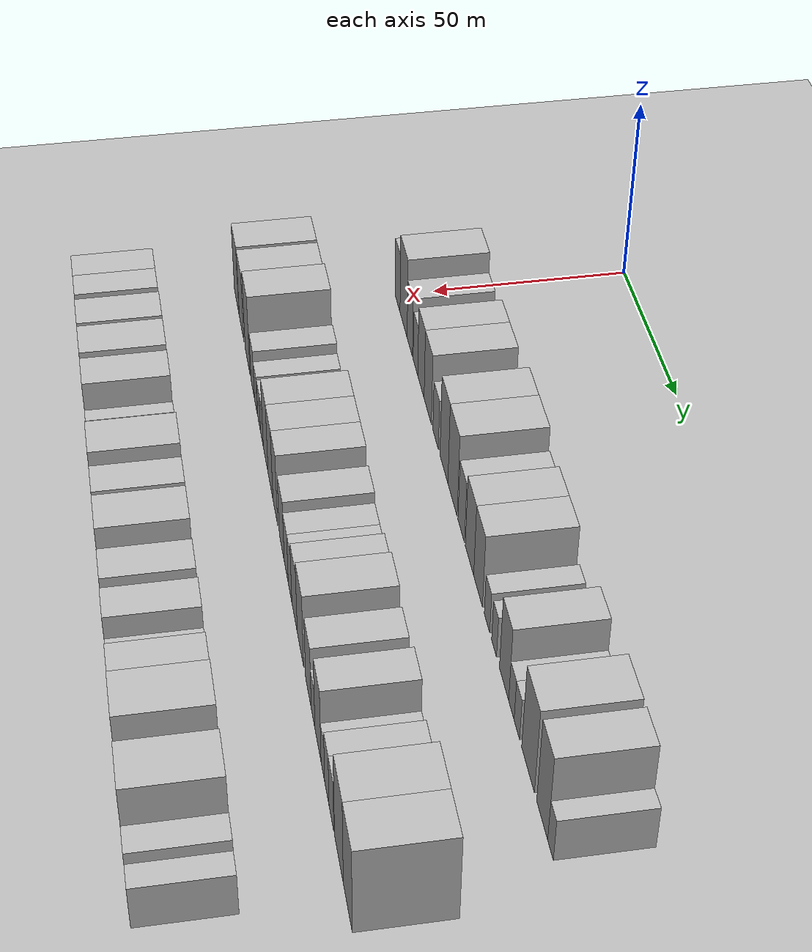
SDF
<sdf version="1.6">
 <world name="default">
  <include><name>ground_plane_1</name><uri>model://HANNAS_ground_plane</uri></include>
  <include>
   <name>ground_plane_2</name>
   <uri>model://HANNAS_ground_plane</uri>
   <pose>100 0 0  0 0 0</pose>
  </include>
  <model name="building_47">
   <static>1</static>
   <pose>50.0000 4.2151 0 0.000000 0.000000 0.000000</pose>
   <link name="link">
    <pose>0 0 9.00 0 0 0</pose>
    <collision name="collision"><geometry><box><size>20.0000 7.3452 18.0000</size></box></geometry></collision>
    <visual name="visual">
     <cast_shadows>0</cast_shadows>
     <geometry><box><size>20.0000 7.3452 18.0000</size></box></geometry>
     <material>
      <script>
       <uri>model://HANNAS_wall/materials/scripts</uri>
       <uri>model://HANNAS_wall/materials/textures</uri>
       <name>vrc/HANNAS_wall</name>
      </script>
     </material>
    </visual>
   </link>
  </model>
  <model name="building_48">
   <static>1</static>
   <pose>50.0000 13.1274 0 0.000000 0.000000 0.000000</pose>
   <link name="link">
    <pose>0 0 12.00 0 0 0</pose>
    <collision name="collision"><geometry><box><size>20.0000 10.4795 24.0000</size></box></geometry></collision>
    <visual name="visual">
     <cast_shadows>0</cast_shadows>
     <geometry><box><size>20.0000 10.4795 24.0000</size></box></geometry>
     <material>
      <script>
       <uri>model://HANNAS_wall/materials/scripts</uri>
       <uri>model://HANNAS_wall/materials/textures</uri>
       <name>vrc/HANNAS_wall</name>
      </script>
     </material>
    </visual>
   </link>
  </model>
  <model name="building_49">
   <static>1</static>
   <pose>50.0000 22.2083 0 0.000000 0.000000 0.000000</pose>
   <link name="link">
    <pose>0 0 9.00 0 0 0</pose>
    <collision name="collision"><geometry><box><size>20.0000 7.6822 18.0000</size></box></geometry></collision>
    <visual name="visual">
     <cast_shadows>0</cast_shadows>
     <geometry><box><size>20.0000 7.6822 18.0000</size></box></geometry>
     <material>
      <script>
       <uri>model://HANNAS_wall/materials/scripts</uri>
       <uri>model://HANNAS_wall/materials/textures</uri>
       <name>vrc/HANNAS_wall</name>
      </script>
     </material>
    </visual>
   </link>
  </model>
  <model name="building_50">
   <static>1</static>
   <pose>50.0000 30.2727 0 0.000000 0.000000 0.000000</pose>
   <link name="link">
    <pose>0 0 7.50 0 0 0</pose>
    <collision name="collision"><geometry><box><size>20.0000 6.4468 15.0000</size></box></geometry></collision>
    <visual name="visual">
     <cast_shadows>0</cast_shadows>
     <geometry><box><size>20.0000 6.4468 15.0000</size></box></geometry>
     <material>
      <script>
       <uri>model://HANNAS_wall/materials/scripts</uri>
       <uri>model://HANNAS_wall/materials/textures</uri>
       <name>vrc/HANNAS_wall</name>
      </script>
     </material>
    </visual>
   </link>
  </model>
  <model name="building_51">
   <static>1</static>
   <pose>50.0000 37.8832 0 0.000000 0.000000 0.000000</pose>
   <link name="link">
    <pose>0 0 10.50 0 0 0</pose>
    <collision name="collision"><geometry><box><size>20.0000 8.7742 21.0000</size></box></geometry></collision>
    <visual name="visual">
     <cast_shadows>0</cast_shadows>
     <geometry><box><size>20.0000 8.7742 21.0000</size></box></geometry>
     <material>
      <script>
       <uri>model://HANNAS_wall/materials/scripts</uri>
       <uri>model://HANNAS_wall/materials/textures</uri>
       <name>vrc/HANNAS_wall</name>
      </script>
     </material>
    </visual>
   </link>
  </model>
  <model name="building_52">
   <static>1</static>
   <pose>50.0000 47.1397 0 0.000000 0.000000 0.000000</pose>
   <link name="link">
    <pose>0 0 10.50 0 0 0</pose>
    <collision name="collision"><geometry><box><size>20.0000 9.7388 21.0000</size></box></geometry></collision>
    <visual name="visual">
     <cast_shadows>0</cast_shadows>
     <geometry><box><size>20.0000 9.7388 21.0000</size></box></geometry>
     <material>
      <script>
       <uri>model://HANNAS_wall/materials/scripts</uri>
       <uri>model://HANNAS_wall/materials/textures</uri>
       <name>vrc/HANNAS_wall</name>
      </script>
     </material>
    </visual>
   </link>
  </model>
  <model name="building_53">
   <static>1</static>
   <pose>50.0000 57.5916 0 0.000000 0.000000 0.000000</pose>
   <link name="link">
    <pose>0 0 7.50 0 0 0</pose>
    <collision name="collision"><geometry><box><size>20.0000 7.1648 15.0000</size></box></geometry></collision>
    <visual name="visual">
     <cast_shadows>0</cast_shadows>
     <geometry><box><size>20.0000 7.1648 15.0000</size></box></geometry>
     <material>
      <script>
       <uri>model://HANNAS_wall/materials/scripts</uri>
       <uri>model://HANNAS_wall/materials/textures</uri>
       <name>vrc/HANNAS_wall</name>
      </script>
     </material>
    </visual>
   </link>
  </model>
  <model name="building_54">
   <static>1</static>
   <pose>50.0000 68.1539 0 0.000000 0.000000 0.000000</pose>
   <link name="link">
    <pose>0 0 12.00 0 0 0</pose>
    <collision name="collision"><geometry><box><size>20.0000 9.9598 24.0000</size></box></geometry></collision>
    <visual name="visual">
     <cast_shadows>0</cast_shadows>
     <geometry><box><size>20.0000 9.9598 24.0000</size></box></geometry>
     <material>
      <script>
       <uri>model://HANNAS_wall/materials/scripts</uri>
       <uri>model://HANNAS_wall/materials/textures</uri>
       <name>vrc/HANNAS_wall</name>
      </script>
     </material>
    </visual>
   </link>
  </model>
  <model name="building_55">
   <static>1</static>
   <pose>50.0000 78.7421 0 0.000000 0.000000 0.000000</pose>
   <link name="link">
    <pose>0 0 12.00 0 0 0</pose>
    <collision name="collision"><geometry><box><size>20.0000 11.2167 24.0000</size></box></geometry></collision>
    <visual name="visual">
     <cast_shadows>0</cast_shadows>
     <geometry><box><size>20.0000 11.2167 24.0000</size></box></geometry>
     <material>
      <script>
       <uri>model://HANNAS_wall/materials/scripts</uri>
       <uri>model://HANNAS_wall/materials/textures</uri>
       <name>vrc/HANNAS_wall</name>
      </script>
     </material>
    </visual>
   </link>
  </model>
  <model name="building_56">
   <static>1</static>
   <pose>50.0000 89.1733 0 0.000000 0.000000 0.000000</pose>
   <link name="link">
    <pose>0 0 9.00 0 0 0</pose>
    <collision name="collision"><geometry><box><size>20.0000 7.6456 18.0000</size></box></geometry></collision>
    <visual name="visual">
     <cast_shadows>0</cast_shadows>
     <geometry><box><size>20.0000 7.6456 18.0000</size></box></geometry>
     <material>
      <script>
       <uri>model://HANNAS_wall/materials/scripts</uri>
       <uri>model://HANNAS_wall/materials/textures</uri>
       <name>vrc/HANNAS_wall</name>
      </script>
     </material>
    </visual>
   </link>
  </model>
  <model name="building_57">
   <static>1</static>
   <pose>50.0000 98.7597 0 0.000000 0.000000 0.000000</pose>
   <link name="link">
    <pose>0 0 10.50 0 0 0</pose>
    <collision name="collision"><geometry><box><size>20.0000 9.5273 21.0000</size></box></geometry></collision>
    <visual name="visual">
     <cast_shadows>0</cast_shadows>
     <geometry><box><size>20.0000 9.5273 21.0000</size></box></geometry>
     <material>
      <script>
       <uri>model://HANNAS_wall/materials/scripts</uri>
       <uri>model://HANNAS_wall/materials/textures</uri>
       <name>vrc/HANNAS_wall</name>
      </script>
     </material>
    </visual>
   </link>
  </model>
  <model name="building_58">
   <static>1</static>
   <pose>50.0000 108.3690 0 0.000000 0.000000 0.000000</pose>
   <link name="link">
    <pose>0 0 10.50 0 0 0</pose>
    <collision name="collision"><geometry><box><size>20.0000 9.6912 21.0000</size></box></geometry></collision>
    <visual name="visual">
     <cast_shadows>0</cast_shadows>
     <geometry><box><size>20.0000 9.6912 21.0000</size></box></geometry>
     <material>
      <script>
       <uri>model://HANNAS_wall/materials/scripts</uri>
       <uri>model://HANNAS_wall/materials/textures</uri>
       <name>vrc/HANNAS_wall</name>
      </script>
     </material>
    </visual>
   </link>
  </model>
  <model name="building_59">
   <static>1</static>
   <pose>50.0000 118.1064 0 0.000000 0.000000 0.000000</pose>
   <link name="link">
    <pose>0 0 6.00 0 0 0</pose>
    <collision name="collision"><geometry><box><size>20.0000 5.7835 12.0000</size></box></geometry></collision>
    <visual name="visual">
     <cast_shadows>0</cast_shadows>
     <geometry><box><size>20.0000 5.7835 12.0000</size></box></geometry>
     <material>
      <script>
       <uri>model://HANNAS_wall/materials/scripts</uri>
       <uri>model://HANNAS_wall/materials/textures</uri>
       <name>vrc/HANNAS_wall</name>
      </script>
     </material>
    </visual>
   </link>
  </model>
  <model name="building_60">
   <static>1</static>
   <pose>50.0000 125.5553 0 0.000000 0.000000 0.000000</pose>
   <link name="link">
    <pose>0 0 6.00 0 0 0</pose>
    <collision name="collision"><geometry><box><size>20.0000 5.1142 12.0000</size></box></geometry></collision>
    <visual name="visual">
     <cast_shadows>0</cast_shadows>
     <geometry><box><size>20.0000 5.1142 12.0000</size></box></geometry>
     <material>
      <script>
       <uri>model://HANNAS_wall/materials/scripts</uri>
       <uri>model://HANNAS_wall/materials/textures</uri>
       <name>vrc/HANNAS_wall</name>
      </script>
     </material>
    </visual>
   </link>
  </model>
  <model name="building_61">
   <static>1</static>
   <pose>50.0000 135.7428 0 0.000000 0.000000 0.000000</pose>
   <link name="link">
    <pose>0 0 10.50 0 0 0</pose>
    <collision name="collision"><geometry><box><size>20.0000 9.2609 21.0000</size></box></geometry></collision>
    <visual name="visual">
     <cast_shadows>0</cast_shadows>
     <geometry><box><size>20.0000 9.2609 21.0000</size></box></geometry>
     <material>
      <script>
       <uri>model://HANNAS_wall/materials/scripts</uri>
       <uri>model://HANNAS_wall/materials/textures</uri>
       <name>vrc/HANNAS_wall</name>
      </script>
     </material>
    </visual>
   </link>
  </model>
  <model name="building_62">
   <static>1</static>
   <pose>50.0000 143.0421 0 0.000000 0.000000 0.000000</pose>
   <link name="link">
    <pose>0 0 6.00 0 0 0</pose>
    <collision name="collision"><geometry><box><size>20.0000 5.3376 12.0000</size></box></geometry></collision>
    <visual name="visual">
     <cast_shadows>0</cast_shadows>
     <geometry><box><size>20.0000 5.3376 12.0000</size></box></geometry>
     <material>
      <script>
       <uri>model://HANNAS_wall/materials/scripts</uri>
       <uri>model://HANNAS_wall/materials/textures</uri>
       <name>vrc/HANNAS_wall</name>
      </script>
     </material>
    </visual>
   </link>
  </model>
  <model name="building_63">
   <static>1</static>
   <pose>50.0000 148.3317 0 0.000000 0.000000 0.000000</pose>
   <link name="link">
    <pose>0 0 6.00 0 0 0</pose>
    <collision name="collision"><geometry><box><size>20.0000 5.2416 12.0000</size></box></geometry></collision>
    <visual name="visual">
     <cast_shadows>0</cast_shadows>
     <geometry><box><size>20.0000 5.2416 12.0000</size></box></geometry>
     <material>
      <script>
       <uri>model://HANNAS_wall/materials/scripts</uri>
       <uri>model://HANNAS_wall/materials/textures</uri>
       <name>vrc/HANNAS_wall</name>
      </script>
     </material>
    </visual>
   </link>
  </model>
  <model name="building_64">
   <static>1</static>
   <pose>50.0000 158.8901 0 0.000000 0.000000 0.000000</pose>
   <link name="link">
    <pose>0 0 12.00 0 0 0</pose>
    <collision name="collision"><geometry><box><size>20.0000 11.8753 24.0000</size></box></geometry></collision>
    <visual name="visual">
     <cast_shadows>0</cast_shadows>
     <geometry><box><size>20.0000 11.8753 24.0000</size></box></geometry>
     <material>
      <script>
       <uri>model://HANNAS_wall/materials/scripts</uri>
       <uri>model://HANNAS_wall/materials/textures</uri>
       <name>vrc/HANNAS_wall</name>
      </script>
     </material>
    </visual>
   </link>
  </model>
  <model name="building_65">
   <static>1</static>
   <pose>50.0000 171.6861 0 0.000000 0.000000 0.000000</pose>
   <link name="link">
    <pose>0 0 12.00 0 0 0</pose>
    <collision name="collision"><geometry><box><size>20.0000 9.7167 24.0000</size></box></geometry></collision>
    <visual name="visual">
     <cast_shadows>0</cast_shadows>
     <geometry><box><size>20.0000 9.7167 24.0000</size></box></geometry>
     <material>
      <script>
       <uri>model://HANNAS_wall/materials/scripts</uri>
       <uri>model://HANNAS_wall/materials/textures</uri>
       <name>vrc/HANNAS_wall</name>
      </script>
     </material>
    </visual>
   </link>
  </model>
  <model name="building_66">
   <static>1</static>
   <pose>50.0000 178.9846 0 0.000000 0.000000 0.000000</pose>
   <link name="link">
    <pose>0 0 6.00 0 0 0</pose>
    <collision name="collision"><geometry><box><size>20.0000 4.8803 12.0000</size></box></geometry></collision>
    <visual name="visual">
     <cast_shadows>0</cast_shadows>
     <geometry><box><size>20.0000 4.8803 12.0000</size></box></geometry>
     <material>
      <script>
       <uri>model://HANNAS_wall/materials/scripts</uri>
       <uri>model://HANNAS_wall/materials/textures</uri>
       <name>vrc/HANNAS_wall</name>
      </script>
     </material>
    </visual>
   </link>
  </model>
  <model name="building_133">
   <static>1</static>
   <pose>90.0000 -2.7751 0 0.000000 0.000000 0.000000</pose>
   <link name="link">
    <pose>0 0 10.50 0 0 0</pose>
    <collision name="collision"><geometry><box><size>20.0000 10.3760 21.0000</size></box></geometry></collision>
    <visual name="visual">
     <cast_shadows>0</cast_shadows>
     <geometry><box><size>20.0000 10.3760 21.0000</size></box></geometry>
     <material>
      <script>
       <uri>model://HANNAS_wall/materials/scripts</uri>
       <uri>model://HANNAS_wall/materials/textures</uri>
       <name>vrc/HANNAS_wall</name>
      </script>
     </material>
    </visual>
   </link>
  </model>
  <model name="building_134">
   <static>1</static>
   <pose>90.0000 8.4978 0 0.000000 0.000000 0.000000</pose>
   <link name="link">
    <pose>0 0 10.50 0 0 0</pose>
    <collision name="collision"><geometry><box><size>20.0000 10.1699 21.0000</size></box></geometry></collision>
    <visual name="visual">
     <cast_shadows>0</cast_shadows>
     <geometry><box><size>20.0000 10.1699 21.0000</size></box></geometry>
     <material>
      <script>
       <uri>model://HANNAS_wall/materials/scripts</uri>
       <uri>model://HANNAS_wall/materials/textures</uri>
       <name>vrc/HANNAS_wall</name>
      </script>
     </material>
    </visual>
   </link>
  </model>
  <model name="building_135">
   <static>1</static>
   <pose>90.0000 21.8195 0 0.000000 0.000000 0.000000</pose>
   <link name="link">
    <pose>0 0 12.00 0 0 0</pose>
    <collision name="collision"><geometry><box><size>20.0000 10.4735 24.0000</size></box></geometry></collision>
    <visual name="visual">
     <cast_shadows>0</cast_shadows>
     <geometry><box><size>20.0000 10.4735 24.0000</size></box></geometry>
     <material>
      <script>
       <uri>model://HANNAS_wall/materials/scripts</uri>
       <uri>model://HANNAS_wall/materials/textures</uri>
       <name>vrc/HANNAS_wall</name>
      </script>
     </material>
    </visual>
   </link>
  </model>
  <model name="building_136">
   <static>1</static>
   <pose>90.0000 32.7237 0 0.000000 0.000000 0.000000</pose>
   <link name="link">
    <pose>0 0 7.50 0 0 0</pose>
    <collision name="collision"><geometry><box><size>20.0000 7.3347 15.0000</size></box></geometry></collision>
    <visual name="visual">
     <cast_shadows>0</cast_shadows>
     <geometry><box><size>20.0000 7.3347 15.0000</size></box></geometry>
     <material>
      <script>
       <uri>model://HANNAS_wall/materials/scripts</uri>
       <uri>model://HANNAS_wall/materials/textures</uri>
       <name>vrc/HANNAS_wall</name>
      </script>
     </material>
    </visual>
   </link>
  </model>
  <model name="building_137">
   <static>1</static>
   <pose>90.0000 39.3411 0 0.000000 0.000000 0.000000</pose>
   <link name="link">
    <pose>0 0 6.00 0 0 0</pose>
    <collision name="collision"><geometry><box><size>20.0000 5.9003 12.0000</size></box></geometry></collision>
    <visual name="visual">
     <cast_shadows>0</cast_shadows>
     <geometry><box><size>20.0000 5.9003 12.0000</size></box></geometry>
     <material>
      <script>
       <uri>model://HANNAS_wall/materials/scripts</uri>
       <uri>model://HANNAS_wall/materials/textures</uri>
       <name>vrc/HANNAS_wall</name>
      </script>
     </material>
    </visual>
   </link>
  </model>
  <model name="building_138">
   <static>1</static>
   <pose>90.0000 45.9272 0 0.000000 0.000000 0.000000</pose>
   <link name="link">
    <pose>0 0 6.00 0 0 0</pose>
    <collision name="collision"><geometry><box><size>20.0000 5.2719 12.0000</size></box></geometry></collision>
    <visual name="visual">
     <cast_shadows>0</cast_shadows>
     <geometry><box><size>20.0000 5.2719 12.0000</size></box></geometry>
     <material>
      <script>
       <uri>model://HANNAS_wall/materials/scripts</uri>
       <uri>model://HANNAS_wall/materials/textures</uri>
       <name>vrc/HANNAS_wall</name>
      </script>
     </material>
    </visual>
   </link>
  </model>
  <model name="building_139">
   <static>1</static>
   <pose>90.0000 51.3323 0 0.000000 0.000000 0.000000</pose>
   <link name="link">
    <pose>0 0 6.00 0 0 0</pose>
    <collision name="collision"><geometry><box><size>20.0000 5.5383 12.0000</size></box></geometry></collision>
    <visual name="visual">
     <cast_shadows>0</cast_shadows>
     <geometry><box><size>20.0000 5.5383 12.0000</size></box></geometry>
     <material>
      <script>
       <uri>model://HANNAS_wall/materials/scripts</uri>
       <uri>model://HANNAS_wall/materials/textures</uri>
       <name>vrc/HANNAS_wall</name>
      </script>
     </material>
    </visual>
   </link>
  </model>
  <model name="building_140">
   <static>1</static>
   <pose>90.0000 58.7376 0 0.000000 0.000000 0.000000</pose>
   <link name="link">
    <pose>0 0 10.50 0 0 0</pose>
    <collision name="collision"><geometry><box><size>20.0000 9.2723 21.0000</size></box></geometry></collision>
    <visual name="visual">
     <cast_shadows>0</cast_shadows>
     <geometry><box><size>20.0000 9.2723 21.0000</size></box></geometry>
     <material>
      <script>
       <uri>model://HANNAS_wall/materials/scripts</uri>
       <uri>model://HANNAS_wall/materials/textures</uri>
       <name>vrc/HANNAS_wall</name>
      </script>
     </material>
    </visual>
   </link>
  </model>
  <model name="building_141">
   <static>1</static>
   <pose>90.0000 67.9234 0 0.000000 0.000000 0.000000</pose>
   <link name="link">
    <pose>0 0 10.50 0 0 0</pose>
    <collision name="collision"><geometry><box><size>20.0000 9.0994 21.0000</size></box></geometry></collision>
    <visual name="visual">
     <cast_shadows>0</cast_shadows>
     <geometry><box><size>20.0000 9.0994 21.0000</size></box></geometry>
     <material>
      <script>
       <uri>model://HANNAS_wall/materials/scripts</uri>
       <uri>model://HANNAS_wall/materials/textures</uri>
       <name>vrc/HANNAS_wall</name>
      </script>
     </material>
    </visual>
   </link>
  </model>
  <model name="building_142">
   <static>1</static>
   <pose>90.0000 76.7113 0 0.000000 0.000000 0.000000</pose>
   <link name="link">
    <pose>0 0 10.50 0 0 0</pose>
    <collision name="collision"><geometry><box><size>20.0000 8.4764 21.0000</size></box></geometry></collision>
    <visual name="visual">
     <cast_shadows>0</cast_shadows>
     <geometry><box><size>20.0000 8.4764 21.0000</size></box></geometry>
     <material>
      <script>
       <uri>model://HANNAS_wall/materials/scripts</uri>
       <uri>model://HANNAS_wall/materials/textures</uri>
       <name>vrc/HANNAS_wall</name>
      </script>
     </material>
    </visual>
   </link>
  </model>
  <model name="building_143">
   <static>1</static>
   <pose>90.0000 88.3509 0 0.000000 0.000000 0.000000</pose>
   <link name="link">
    <pose>0 0 9.00 0 0 0</pose>
    <collision name="collision"><geometry><box><size>20.0000 8.8028 18.0000</size></box></geometry></collision>
    <visual name="visual">
     <cast_shadows>0</cast_shadows>
     <geometry><box><size>20.0000 8.8028 18.0000</size></box></geometry>
     <material>
      <script>
       <uri>model://HANNAS_wall/materials/scripts</uri>
       <uri>model://HANNAS_wall/materials/textures</uri>
       <name>vrc/HANNAS_wall</name>
      </script>
     </material>
    </visual>
   </link>
  </model>
  <model name="building_144">
   <static>1</static>
   <pose>90.0000 96.1806 0 0.000000 0.000000 0.000000</pose>
   <link name="link">
    <pose>0 0 7.50 0 0 0</pose>
    <collision name="collision"><geometry><box><size>20.0000 6.8566 15.0000</size></box></geometry></collision>
    <visual name="visual">
     <cast_shadows>0</cast_shadows>
     <geometry><box><size>20.0000 6.8566 15.0000</size></box></geometry>
     <material>
      <script>
       <uri>model://HANNAS_wall/materials/scripts</uri>
       <uri>model://HANNAS_wall/materials/textures</uri>
       <name>vrc/HANNAS_wall</name>
      </script>
     </material>
    </visual>
   </link>
  </model>
  <model name="building_145">
   <static>1</static>
   <pose>90.0000 102.6287 0 0.000000 0.000000 0.000000</pose>
   <link name="link">
    <pose>0 0 7.50 0 0 0</pose>
    <collision name="collision"><geometry><box><size>20.0000 6.0395 15.0000</size></box></geometry></collision>
    <visual name="visual">
     <cast_shadows>0</cast_shadows>
     <geometry><box><size>20.0000 6.0395 15.0000</size></box></geometry>
     <material>
      <script>
       <uri>model://HANNAS_wall/materials/scripts</uri>
       <uri>model://HANNAS_wall/materials/textures</uri>
       <name>vrc/HANNAS_wall</name>
      </script>
     </material>
    </visual>
   </link>
  </model>
  <model name="building_146">
   <static>1</static>
   <pose>90.0000 110.0951 0 0.000000 0.000000 0.000000</pose>
   <link name="link">
    <pose>0 0 9.00 0 0 0</pose>
    <collision name="collision"><geometry><box><size>20.0000 8.8934 18.0000</size></box></geometry></collision>
    <visual name="visual">
     <cast_shadows>0</cast_shadows>
     <geometry><box><size>20.0000 8.8934 18.0000</size></box></geometry>
     <material>
      <script>
       <uri>model://HANNAS_wall/materials/scripts</uri>
       <uri>model://HANNAS_wall/materials/textures</uri>
       <name>vrc/HANNAS_wall</name>
      </script>
     </material>
    </visual>
   </link>
  </model>
  <model name="building_147">
   <static>1</static>
   <pose>90.0000 119.5624 0 0.000000 0.000000 0.000000</pose>
   <link name="link">
    <pose>0 0 10.50 0 0 0</pose>
    <collision name="collision"><geometry><box><size>20.0000 10.0412 21.0000</size></box></geometry></collision>
    <visual name="visual">
     <cast_shadows>0</cast_shadows>
     <geometry><box><size>20.0000 10.0412 21.0000</size></box></geometry>
     <material>
      <script>
       <uri>model://HANNAS_wall/materials/scripts</uri>
       <uri>model://HANNAS_wall/materials/textures</uri>
       <name>vrc/HANNAS_wall</name>
      </script>
     </material>
    </visual>
   </link>
  </model>
  <model name="building_148">
   <static>1</static>
   <pose>90.0000 131.9085 0 0.000000 0.000000 0.000000</pose>
   <link name="link">
    <pose>0 0 9.00 0 0 0</pose>
    <collision name="collision"><geometry><box><size>20.0000 8.6510 18.0000</size></box></geometry></collision>
    <visual name="visual">
     <cast_shadows>0</cast_shadows>
     <geometry><box><size>20.0000 8.6510 18.0000</size></box></geometry>
     <material>
      <script>
       <uri>model://HANNAS_wall/materials/scripts</uri>
       <uri>model://HANNAS_wall/materials/textures</uri>
       <name>vrc/HANNAS_wall</name>
      </script>
     </material>
    </visual>
   </link>
  </model>
  <model name="building_149">
   <static>1</static>
   <pose>90.0000 139.0024 0 0.000000 0.000000 0.000000</pose>
   <link name="link">
    <pose>0 0 6.00 0 0 0</pose>
    <collision name="collision"><geometry><box><size>20.0000 5.5368 12.0000</size></box></geometry></collision>
    <visual name="visual">
     <cast_shadows>0</cast_shadows>
     <geometry><box><size>20.0000 5.5368 12.0000</size></box></geometry>
     <material>
      <script>
       <uri>model://HANNAS_wall/materials/scripts</uri>
       <uri>model://HANNAS_wall/materials/textures</uri>
       <name>vrc/HANNAS_wall</name>
      </script>
     </material>
    </visual>
   </link>
  </model>
  <model name="building_150">
   <static>1</static>
   <pose>90.0000 146.1587 0 0.000000 0.000000 0.000000</pose>
   <link name="link">
    <pose>0 0 10.50 0 0 0</pose>
    <collision name="collision"><geometry><box><size>20.0000 8.7758 21.0000</size></box></geometry></collision>
    <visual name="visual">
     <cast_shadows>0</cast_shadows>
     <geometry><box><size>20.0000 8.7758 21.0000</size></box></geometry>
     <material>
      <script>
       <uri>model://HANNAS_wall/materials/scripts</uri>
       <uri>model://HANNAS_wall/materials/textures</uri>
       <name>vrc/HANNAS_wall</name>
      </script>
     </material>
    </visual>
   </link>
  </model>
  <model name="building_151">
   <static>1</static>
   <pose>90.0000 153.0803 0 0.000000 0.000000 0.000000</pose>
   <link name="link">
    <pose>0 0 6.00 0 0 0</pose>
    <collision name="collision"><geometry><box><size>20.0000 5.0675 12.0000</size></box></geometry></collision>
    <visual name="visual">
     <cast_shadows>0</cast_shadows>
     <geometry><box><size>20.0000 5.0675 12.0000</size></box></geometry>
     <material>
      <script>
       <uri>model://HANNAS_wall/materials/scripts</uri>
       <uri>model://HANNAS_wall/materials/textures</uri>
       <name>vrc/HANNAS_wall</name>
      </script>
     </material>
    </visual>
   </link>
  </model>
  <model name="building_152">
   <static>1</static>
   <pose>90.0000 158.6460 0 0.000000 0.000000 0.000000</pose>
   <link name="link">
    <pose>0 0 7.50 0 0 0</pose>
    <collision name="collision"><geometry><box><size>20.0000 6.0639 15.0000</size></box></geometry></collision>
    <visual name="visual">
     <cast_shadows>0</cast_shadows>
     <geometry><box><size>20.0000 6.0639 15.0000</size></box></geometry>
     <material>
      <script>
       <uri>model://HANNAS_wall/materials/scripts</uri>
       <uri>model://HANNAS_wall/materials/textures</uri>
       <name>vrc/HANNAS_wall</name>
      </script>
     </material>
    </visual>
   </link>
  </model>
  <model name="building_153">
   <static>1</static>
   <pose>90.0000 164.8901 0 0.000000 0.000000 0.000000</pose>
   <link name="link">
    <pose>0 0 7.50 0 0 0</pose>
    <collision name="collision"><geometry><box><size>20.0000 6.4243 15.0000</size></box></geometry></collision>
    <visual name="visual">
     <cast_shadows>0</cast_shadows>
     <geometry><box><size>20.0000 6.4243 15.0000</size></box></geometry>
     <material>
      <script>
       <uri>model://HANNAS_wall/materials/scripts</uri>
       <uri>model://HANNAS_wall/materials/textures</uri>
       <name>vrc/HANNAS_wall</name>
      </script>
     </material>
    </visual>
   </link>
  </model>
  <model name="building_154">
   <static>1</static>
   <pose>90.0000 174.7963 0 0.000000 0.000000 0.000000</pose>
   <link name="link">
    <pose>0 0 12.00 0 0 0</pose>
    <collision name="collision"><geometry><box><size>20.0000 11.3881 24.0000</size></box></geometry></collision>
    <visual name="visual">
     <cast_shadows>0</cast_shadows>
     <geometry><box><size>20.0000 11.3881 24.0000</size></box></geometry>
     <material>
      <script>
       <uri>model://HANNAS_wall/materials/scripts</uri>
       <uri>model://HANNAS_wall/materials/textures</uri>
       <name>vrc/HANNAS_wall</name>
      </script>
     </material>
    </visual>
   </link>
  </model>
  <model name="building_155">
   <static>1</static>
   <pose>90.0000 186.1167 0 0.000000 0.000000 0.000000</pose>
   <link name="link">
    <pose>0 0 12.00 0 0 0</pose>
    <collision name="collision"><geometry><box><size>20.0000 11.2526 24.0000</size></box></geometry></collision>
    <visual name="visual">
     <cast_shadows>0</cast_shadows>
     <geometry><box><size>20.0000 11.2526 24.0000</size></box></geometry>
     <material>
      <script>
       <uri>model://HANNAS_wall/materials/scripts</uri>
       <uri>model://HANNAS_wall/materials/textures</uri>
       <name>vrc/HANNAS_wall</name>
      </script>
     </material>
    </visual>
   </link>
  </model>
  <model name="building_215">
   <static>1</static>
   <pose>130.0000 -0.5236 0 0.000000 0.000000 0.000000</pose>
   <link name="link">
    <pose>0 0 9.00 0 0 0</pose>
    <collision name="collision"><geometry><box><size>20.0000 8.3599 18.0000</size></box></geometry></collision>
    <visual name="visual">
     <cast_shadows>0</cast_shadows>
     <geometry><box><size>20.0000 8.3599 18.0000</size></box></geometry>
     <material>
      <script>
       <uri>model://HANNAS_wall/materials/scripts</uri>
       <uri>model://HANNAS_wall/materials/textures</uri>
       <name>vrc/HANNAS_wall</name>
      </script>
     </material>
    </visual>
   </link>
  </model>
  <model name="building_216">
   <static>1</static>
   <pose>130.0000 7.6116 0 0.000000 0.000000 0.000000</pose>
   <link name="link">
    <pose>0 0 9.00 0 0 0</pose>
    <collision name="collision"><geometry><box><size>20.0000 7.9106 18.0000</size></box></geometry></collision>
    <visual name="visual">
     <cast_shadows>0</cast_shadows>
     <geometry><box><size>20.0000 7.9106 18.0000</size></box></geometry>
     <material>
      <script>
       <uri>model://HANNAS_wall/materials/scripts</uri>
       <uri>model://HANNAS_wall/materials/textures</uri>
       <name>vrc/HANNAS_wall</name>
      </script>
     </material>
    </visual>
   </link>
  </model>
  <model name="building_217">
   <static>1</static>
   <pose>130.0000 14.4988 0 0.000000 0.000000 0.000000</pose>
   <link name="link">
    <pose>0 0 6.00 0 0 0</pose>
    <collision name="collision"><geometry><box><size>20.0000 5.8637 12.0000</size></box></geometry></collision>
    <visual name="visual">
     <cast_shadows>0</cast_shadows>
     <geometry><box><size>20.0000 5.8637 12.0000</size></box></geometry>
     <material>
      <script>
       <uri>model://HANNAS_wall/materials/scripts</uri>
       <uri>model://HANNAS_wall/materials/textures</uri>
       <name>vrc/HANNAS_wall</name>
      </script>
     </material>
    </visual>
   </link>
  </model>
  <model name="building_218">
   <static>1</static>
   <pose>130.0000 22.2190 0 0.000000 0.000000 0.000000</pose>
   <link name="link">
    <pose>0 0 10.50 0 0 0</pose>
    <collision name="collision"><geometry><box><size>20.0000 9.5768 21.0000</size></box></geometry></collision>
    <visual name="visual">
     <cast_shadows>0</cast_shadows>
     <geometry><box><size>20.0000 9.5768 21.0000</size></box></geometry>
     <material>
      <script>
       <uri>model://HANNAS_wall/materials/scripts</uri>
       <uri>model://HANNAS_wall/materials/textures</uri>
       <name>vrc/HANNAS_wall</name>
      </script>
     </material>
    </visual>
   </link>
  </model>
  <model name="building_219">
   <static>1</static>
   <pose>130.0000 33.1054 0 0.000000 0.000000 0.000000</pose>
   <link name="link">
    <pose>0 0 10.50 0 0 0</pose>
    <collision name="collision"><geometry><box><size>20.0000 10.1960 21.0000</size></box></geometry></collision>
    <visual name="visual">
     <cast_shadows>0</cast_shadows>
     <geometry><box><size>20.0000 10.1960 21.0000</size></box></geometry>
     <material>
      <script>
       <uri>model://HANNAS_wall/materials/scripts</uri>
       <uri>model://HANNAS_wall/materials/textures</uri>
       <name>vrc/HANNAS_wall</name>
      </script>
     </material>
    </visual>
   </link>
  </model>
  <model name="building_220">
   <static>1</static>
   <pose>130.0000 44.9539 0 0.000000 0.000000 0.000000</pose>
   <link name="link">
    <pose>0 0 10.50 0 0 0</pose>
    <collision name="collision"><geometry><box><size>20.0000 9.5009 21.0000</size></box></geometry></collision>
    <visual name="visual">
     <cast_shadows>0</cast_shadows>
     <geometry><box><size>20.0000 9.5009 21.0000</size></box></geometry>
     <material>
      <script>
       <uri>model://HANNAS_wall/materials/scripts</uri>
       <uri>model://HANNAS_wall/materials/textures</uri>
       <name>vrc/HANNAS_wall</name>
      </script>
     </material>
    </visual>
   </link>
  </model>
  <model name="building_221">
   <static>1</static>
   <pose>130.0000 55.4056 0 0.000000 0.000000 0.000000</pose>
   <link name="link">
    <pose>0 0 7.50 0 0 0</pose>
    <collision name="collision"><geometry><box><size>20.0000 7.4026 15.0000</size></box></geometry></collision>
    <visual name="visual">
     <cast_shadows>0</cast_shadows>
     <geometry><box><size>20.0000 7.4026 15.0000</size></box></geometry>
     <material>
      <script>
       <uri>model://HANNAS_wall/materials/scripts</uri>
       <uri>model://HANNAS_wall/materials/textures</uri>
       <name>vrc/HANNAS_wall</name>
      </script>
     </material>
    </visual>
   </link>
  </model>
  <model name="building_222">
   <static>1</static>
   <pose>130.0000 62.8012 0 0.000000 0.000000 0.000000</pose>
   <link name="link">
    <pose>0 0 9.00 0 0 0</pose>
    <collision name="collision"><geometry><box><size>20.0000 7.3885 18.0000</size></box></geometry></collision>
    <visual name="visual">
     <cast_shadows>0</cast_shadows>
     <geometry><box><size>20.0000 7.3885 18.0000</size></box></geometry>
     <material>
      <script>
       <uri>model://HANNAS_wall/materials/scripts</uri>
       <uri>model://HANNAS_wall/materials/textures</uri>
       <name>vrc/HANNAS_wall</name>
      </script>
     </material>
    </visual>
   </link>
  </model>
  <model name="building_223">
   <static>1</static>
   <pose>130.0000 71.7336 0 0.000000 0.000000 0.000000</pose>
   <link name="link">
    <pose>0 0 12.00 0 0 0</pose>
    <collision name="collision"><geometry><box><size>20.0000 10.4763 24.0000</size></box></geometry></collision>
    <visual name="visual">
     <cast_shadows>0</cast_shadows>
     <geometry><box><size>20.0000 10.4763 24.0000</size></box></geometry>
     <material>
      <script>
       <uri>model://HANNAS_wall/materials/scripts</uri>
       <uri>model://HANNAS_wall/materials/textures</uri>
       <name>vrc/HANNAS_wall</name>
      </script>
     </material>
    </visual>
   </link>
  </model>
  <model name="building_224">
   <static>1</static>
   <pose>130.0000 82.1932 0 0.000000 0.000000 0.000000</pose>
   <link name="link">
    <pose>0 0 10.50 0 0 0</pose>
    <collision name="collision"><geometry><box><size>20.0000 8.4430 21.0000</size></box></geometry></collision>
    <visual name="visual">
     <cast_shadows>0</cast_shadows>
     <geometry><box><size>20.0000 8.4430 21.0000</size></box></geometry>
     <material>
      <script>
       <uri>model://HANNAS_wall/materials/scripts</uri>
       <uri>model://HANNAS_wall/materials/textures</uri>
       <name>vrc/HANNAS_wall</name>
      </script>
     </material>
    </visual>
   </link>
  </model>
  <model name="building_225">
   <static>1</static>
   <pose>130.0000 92.6640 0 0.000000 0.000000 0.000000</pose>
   <link name="link">
    <pose>0 0 10.50 0 0 0</pose>
    <collision name="collision"><geometry><box><size>20.0000 10.4986 21.0000</size></box></geometry></collision>
    <visual name="visual">
     <cast_shadows>0</cast_shadows>
     <geometry><box><size>20.0000 10.4986 21.0000</size></box></geometry>
     <material>
      <script>
       <uri>model://HANNAS_wall/materials/scripts</uri>
       <uri>model://HANNAS_wall/materials/textures</uri>
       <name>vrc/HANNAS_wall</name>
      </script>
     </material>
    </visual>
   </link>
  </model>
  <model name="building_226">
   <static>1</static>
   <pose>130.0000 105.3948 0 0.000000 0.000000 0.000000</pose>
   <link name="link">
    <pose>0 0 9.00 0 0 0</pose>
    <collision name="collision"><geometry><box><size>20.0000 8.9628 18.0000</size></box></geometry></collision>
    <visual name="visual">
     <cast_shadows>0</cast_shadows>
     <geometry><box><size>20.0000 8.9628 18.0000</size></box></geometry>
     <material>
      <script>
       <uri>model://HANNAS_wall/materials/scripts</uri>
       <uri>model://HANNAS_wall/materials/textures</uri>
       <name>vrc/HANNAS_wall</name>
      </script>
     </material>
    </visual>
   </link>
  </model>
  <model name="building_227">
   <static>1</static>
   <pose>130.0000 112.7565 0 0.000000 0.000000 0.000000</pose>
   <link name="link">
    <pose>0 0 6.00 0 0 0</pose>
    <collision name="collision"><geometry><box><size>20.0000 5.7607 12.0000</size></box></geometry></collision>
    <visual name="visual">
     <cast_shadows>0</cast_shadows>
     <geometry><box><size>20.0000 5.7607 12.0000</size></box></geometry>
     <material>
      <script>
       <uri>model://HANNAS_wall/materials/scripts</uri>
       <uri>model://HANNAS_wall/materials/textures</uri>
       <name>vrc/HANNAS_wall</name>
      </script>
     </material>
    </visual>
   </link>
  </model>
  <model name="building_228">
   <static>1</static>
   <pose>130.0000 119.9091 0 0.000000 0.000000 0.000000</pose>
   <link name="link">
    <pose>0 0 10.50 0 0 0</pose>
    <collision name="collision"><geometry><box><size>20.0000 8.5444 21.0000</size></box></geometry></collision>
    <visual name="visual">
     <cast_shadows>0</cast_shadows>
     <geometry><box><size>20.0000 8.5444 21.0000</size></box></geometry>
     <material>
      <script>
       <uri>model://HANNAS_wall/materials/scripts</uri>
       <uri>model://HANNAS_wall/materials/textures</uri>
       <name>vrc/HANNAS_wall</name>
      </script>
     </material>
    </visual>
   </link>
  </model>
  <model name="building_229">
   <static>1</static>
   <pose>130.0000 127.7469 0 0.000000 0.000000 0.000000</pose>
   <link name="link">
    <pose>0 0 7.50 0 0 0</pose>
    <collision name="collision"><geometry><box><size>20.0000 7.1313 15.0000</size></box></geometry></collision>
    <visual name="visual">
     <cast_shadows>0</cast_shadows>
     <geometry><box><size>20.0000 7.1313 15.0000</size></box></geometry>
     <material>
      <script>
       <uri>model://HANNAS_wall/materials/scripts</uri>
       <uri>model://HANNAS_wall/materials/textures</uri>
       <name>vrc/HANNAS_wall</name>
      </script>
     </material>
    </visual>
   </link>
  </model>
  <model name="building_230">
   <static>1</static>
   <pose>130.0000 136.4711 0 0.000000 0.000000 0.000000</pose>
   <link name="link">
    <pose>0 0 10.50 0 0 0</pose>
    <collision name="collision"><geometry><box><size>20.0000 10.3171 21.0000</size></box></geometry></collision>
    <visual name="visual">
     <cast_shadows>0</cast_shadows>
     <geometry><box><size>20.0000 10.3171 21.0000</size></box></geometry>
     <material>
      <script>
       <uri>model://HANNAS_wall/materials/scripts</uri>
       <uri>model://HANNAS_wall/materials/textures</uri>
       <name>vrc/HANNAS_wall</name>
      </script>
     </material>
    </visual>
   </link>
  </model>
  <model name="building_231">
   <static>1</static>
   <pose>130.0000 147.5449 0 0.000000 0.000000 0.000000</pose>
   <link name="link">
    <pose>0 0 12.00 0 0 0</pose>
    <collision name="collision"><geometry><box><size>20.0000 11.8305 24.0000</size></box></geometry></collision>
    <visual name="visual">
     <cast_shadows>0</cast_shadows>
     <geometry><box><size>20.0000 11.8305 24.0000</size></box></geometry>
     <material>
      <script>
       <uri>model://HANNAS_wall/materials/scripts</uri>
       <uri>model://HANNAS_wall/materials/textures</uri>
       <name>vrc/HANNAS_wall</name>
      </script>
     </material>
    </visual>
   </link>
  </model>
  <model name="building_232">
   <static>1</static>
   <pose>130.0000 156.9952 0 0.000000 0.000000 0.000000</pose>
   <link name="link">
    <pose>0 0 6.00 0 0 0</pose>
    <collision name="collision"><geometry><box><size>20.0000 5.0701 12.0000</size></box></geometry></collision>
    <visual name="visual">
     <cast_shadows>0</cast_shadows>
     <geometry><box><size>20.0000 5.0701 12.0000</size></box></geometry>
     <material>
      <script>
       <uri>model://HANNAS_wall/materials/scripts</uri>
       <uri>model://HANNAS_wall/materials/textures</uri>
       <name>vrc/HANNAS_wall</name>
      </script>
     </material>
    </visual>
   </link>
  </model>
  <model name="building_233">
   <static>1</static>
   <pose>130.0000 165.3867 0 0.000000 0.000000 0.000000</pose>
   <link name="link">
    <pose>0 0 12.00 0 0 0</pose>
    <collision name="collision"><geometry><box><size>20.0000 11.7131 24.0000</size></box></geometry></collision>
    <visual name="visual">
     <cast_shadows>0</cast_shadows>
     <geometry><box><size>20.0000 11.7131 24.0000</size></box></geometry>
     <material>
      <script>
       <uri>model://HANNAS_wall/materials/scripts</uri>
       <uri>model://HANNAS_wall/materials/textures</uri>
       <name>vrc/HANNAS_wall</name>
      </script>
     </material>
    </visual>
   </link>
  </model>
  <model name="building_234">
   <static>1</static>
   <pose>130.0000 175.4880 0 0.000000 0.000000 0.000000</pose>
   <link name="link">
    <pose>0 0 7.50 0 0 0</pose>
    <collision name="collision"><geometry><box><size>20.0000 6.4894 15.0000</size></box></geometry></collision>
    <visual name="visual">
     <cast_shadows>0</cast_shadows>
     <geometry><box><size>20.0000 6.4894 15.0000</size></box></geometry>
     <material>
      <script>
       <uri>model://HANNAS_wall/materials/scripts</uri>
       <uri>model://HANNAS_wall/materials/textures</uri>
       <name>vrc/HANNAS_wall</name>
      </script>
     </material>
    </visual>
   </link>
  </model>
  <model name="building_235">
   <static>1</static>
   <pose>130.0000 181.5496 0 0.000000 0.000000 0.000000</pose>
   <link name="link">
    <pose>0 0 6.00 0 0 0</pose>
    <collision name="collision"><geometry><box><size>20.0000 5.6338 12.0000</size></box></geometry></collision>
    <visual name="visual">
     <cast_shadows>0</cast_shadows>
     <geometry><box><size>20.0000 5.6338 12.0000</size></box></geometry>
     <material>
      <script>
       <uri>model://HANNAS_wall/materials/scripts</uri>
       <uri>model://HANNAS_wall/materials/textures</uri>
       <name>vrc/HANNAS_wall</name>
      </script>
     </material>
    </visual>
   </link>
  </model>
 </world>
</sdf>
